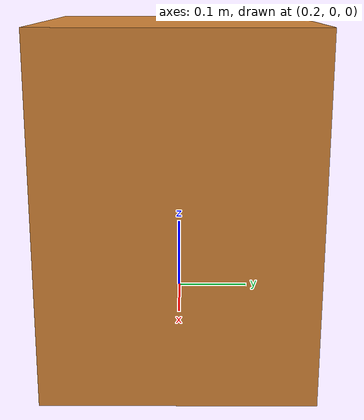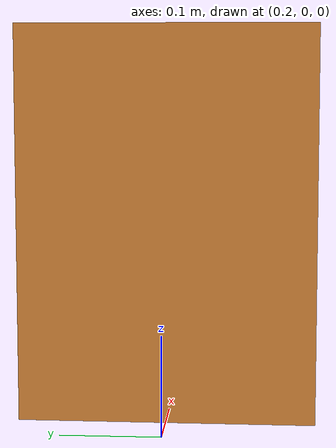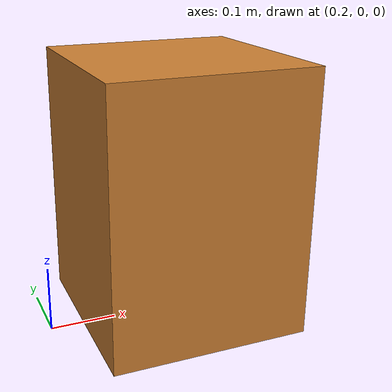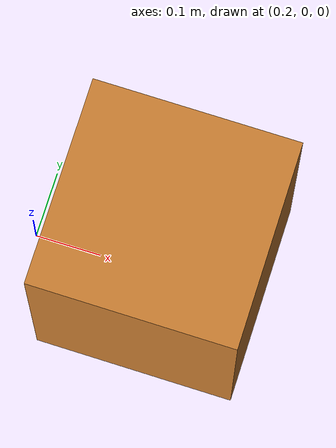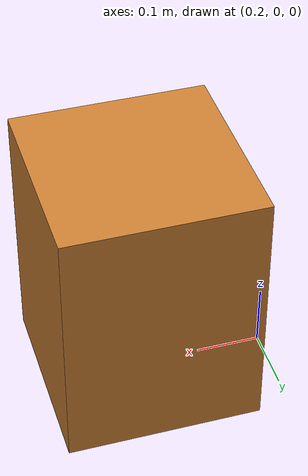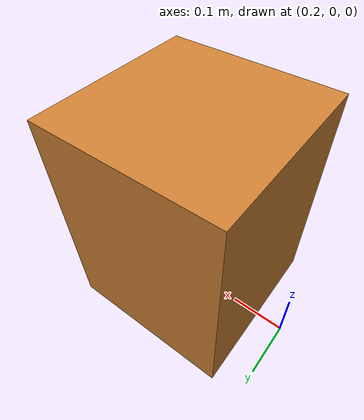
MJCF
<mujoco model="box_1kg">
  <worldbody>
    <body name="box_1kg" pos="0.4 0 0.2">
      <freejoint/>
      <inertial pos="0 0 0" mass="1.0" diaginertia="0.02 0.02 0.02"/>
      <geom type="box" size="0.15 0.15 0.2" rgba="0.8 0.5 0.2 1" contype="1" conaffinity="1"/>
    </body>
  </worldbody>
</mujoco>
